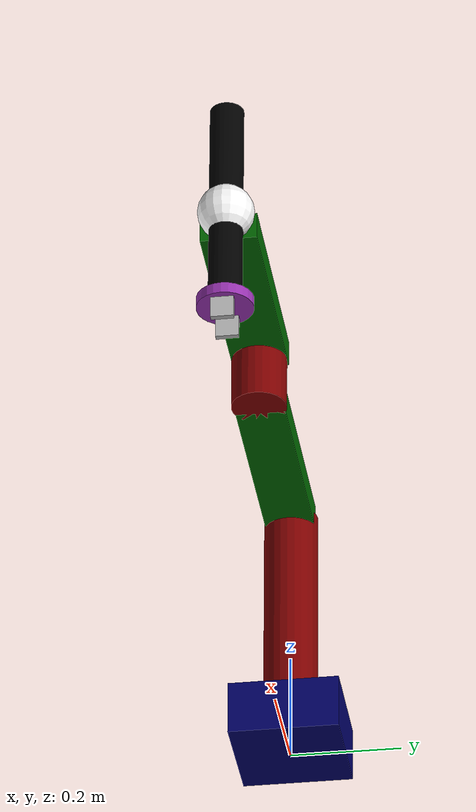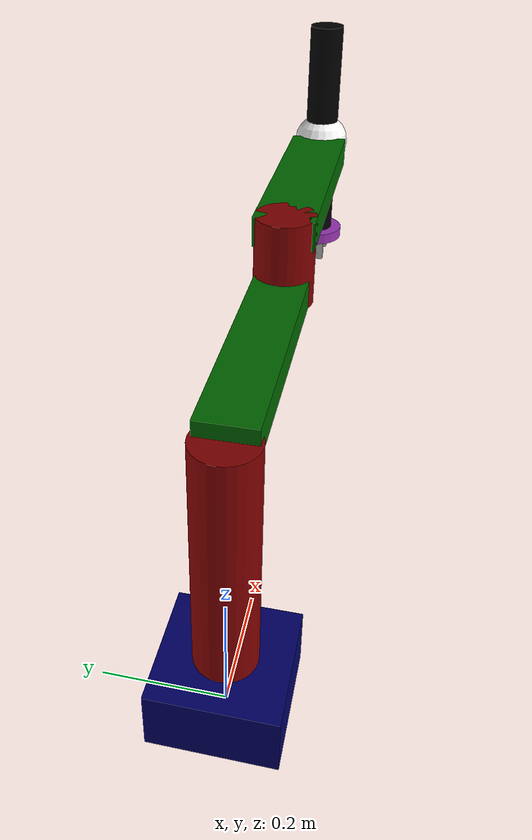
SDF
<?xml version="1.0" ?>
<sdf version="1.4">
  <model name="scara">

    <static>False</static>

    <!--Make the base of the Robot -->

    <link name="base">
        <pose>0 0 0 0 0 0 </pose>
        <collision name="collision_base">
          <pose>0 0 0.1 0 -0 0</pose>
          <geometry>
             <box>
                <size>0.2 0.2 0.1</size>
             </box>
          </geometry>
        </collision>
        <visual name="base_visual">
          <pose> 0 0 0.05 0 -0 0</pose>
          <geometry>
            <box>
               <size>0.2 0.2 0.1</size>
            </box>
          </geometry>
          <material>
            <ambient>0 0 0.4 1</ambient>
            <emissive>0 0 0.4 1</emissive>
          </material>
        </visual>
     </link>
     <!-- Fix the base to the world -->
     <joint name="base_joint" type="fixed">
       <parent>world</parent>
       <child>base</child>
     </joint>
     <!-- Second link -->
     <link name="link_1">
       <pose>0 0 0.1 0 0 0</pose>
       <collision name="link1_collision">
         <pose>0 0 0.1 0 0 0</pose>
         <geometry>
            <cylinder>
                <length>0.4</length>
                <radius>0.05</radius>
            </cylinder>
         </geometry>
       </collision>
       <collision name="link1_fixed_collision">
          <geometry>
             <box>
                <size>0.4 0.1 0.05</size>
             </box>
          </geometry>
       </collision>

       <visual name="link1_visual">
         <pose>0 0 0.2 0 0 0</pose>
         <geometry>
            <cylinder>
               <length>0.4</length>
               <radius>0.05</radius>
            </cylinder>
         </geometry>
         <material>
            <ambient>0.5 0 0 1</ambient>
            <emissive>0.5 0 0 1</emissive>
         </material>
       </visual>
       <visual name="link1_fixed_visual">
         <pose>0.2 0 0.4 0 0 0</pose>
         <geometry>
            <box>
              <size>0.4 0.09 0.05</size>
            </box>
         </geometry>
         <material>
            <ambient>0 0.4 0 1</ambient>
            <emissive>0 0.3 0 1</emissive>
         </material>
       </visual>
     </link>
     <!--Fix the link_1 to base -->
     <joint name="joint_1" type="revolute">
         <child>link_1</child>
         <parent>base</parent>
         <axis>
           <xyz>0 0 1</xyz>
           <limit>
              <lower>-1e+16</lower>
              <upper>1e+16</upper>
           </limit>
           <dynamics>
             <damping>0.2</damping>
             <friction>0.1</friction>
             <spring_reference>0</spring_reference>
             <spring_stiffness>0</spring_stiffness>
           </dynamics>
         </axis>
     </joint>
     <!--Link_2 -->
     <link name="link_2">
        <pose>0.45 0 0.4 0 0 0</pose>
        <collision name="link2_collision">
          <pose>-0.03 0 0.15 0 0 0 </pose>
          <geometry>
            <cylinder>
               <length>0.2</length>
               <radius>0.05</radius>
            </cylinder>
          </geometry>
        </collision>

        <collision name="link2_fixed_collision_1">
          <pose>0.2 0 0.225 0 0 1.57</pose>
          <geometry>
             <box>
                <size>0.1 0.4 0.05</size>
             </box>
          </geometry>
        </collision>

        <collision name="link2_fixed_collision_2">
             <pose>0.43 0 0.23 0 0 0</pose>
             <geometry>
                 <sphere>
                     <radius>0.07</radius>
                 </sphere>
             </geometry>
        </collision>

        <visual name="link2_visual">
           <pose>-0.03 0 0.15 0 0 0 </pose>
           <geometry>
              <cylinder>
                 <length>0.15</length>
                 <radius>0.05</radius>
              </cylinder>
           </geometry>
           <material>
              <ambient>0.5 0 0 1</ambient>
              <emissive>0.5 0 0 1</emissive>
           </material>
        </visual>

        <visual name="link2_fixed_visual_1">
           <pose>0.15 0 0.200 0 0 1.57</pose>
           <geometry>
               <box>
                 <size>0.1 0.4 0.05</size>
               </box>
           </geometry>
           <material>
              <ambient>0 0.4 0 1</ambient>
              <emissive>0 0.3 0 1</emissive>
           </material>
        </visual>
        <visual name="link2_fixed_visual_2">
           <pose>0.38 0 0.21 0 0 0</pose>
           <geometry>
              <sphere>
                  <radius>0.05</radius>
              </sphere>
           </geometry>
           <material>
             <ambient>1 1 1 1</ambient>
             <emissive>1 1 1 1</emissive>
           </material>
        </visual>
      </link>
      <!-- Create joint 2 -->
      <joint name="joint_2" type="revolute">
         <parent>link_1</parent>
         <child>link_2</child>
         <axis>
            <xyz>0 0 1</xyz>
            <limit>
               <lower>-1e+16</lower>
               <upper>1e+16</upper>
            </limit>
            <dynamics>
               <damping>0.2</damping>
               <friction>0.1</friction>
               <spring_reference>0</spring_reference>
               <spring_stiffness>0</spring_stiffness>
            </dynamics>
            <use_parent_model_frame>1</use_parent_model_frame>
         </axis>
       </joint>
       <!-- Link 3 -->
       <link name="link_3">
          <pose>0.25 0 0.225 0 0 0</pose>

          <collision name="link3_collision">
            <pose>0.58 0 0.4 0 0 0</pose>
            <geometry>
                <cylinder>
                   <length>0.3</length>
                   <radius>0.03</radius>
                </cylinder>
            </geometry>
         </collision>
       <visual name="link3_visual">
           <pose>0.58 0 0.4 0 0 0</pose>
           <geometry>
              <cylinder>
                 <length>0.4</length>
                 <radius>0.03</radius>
              </cylinder>
           </geometry>
           <material>
             <ambient>0 0 0 1</ambient>
             <emissive>0 0 0 1</emissive>
           </material>
         </visual>
         <velocity_decay/>
      </link>
      <!-- Joint 3 -->
      <joint name="joint_3" type="prismatic">
         <child>link_3</child>
         <parent>link_2</parent>
         <axis>
           <xyz> 0 0.001593 -0.99999 </xyz>
           <limit>
              <lower>-0.2</lower>
              <upper>0.2</upper>
              <effort>1000</effort>
              <velocity>0.1</velocity>
           </limit>
           <dynamics>
              <damping>0.4</damping>
              <friction>50</friction>
              <spring_reference>0</spring_reference>
              <spring_stiffness>0</spring_stiffness>
           </dynamics>
        </axis>
      </joint>

      <link name="plate">
       <pose>0.828 -0.000 0.44 3.14 -0 0</pose>

        <collision name='collision_plate'>
         <pose>0 0 0.02 0 0 0</pose>
         <geometry>
            <cylinder>
               <length>0.02</length>
               <radius>0.03</radius>
            </cylinder>
         </geometry>
      </collision>

       <visual name="visual_plate">
        <pose>0 0 0.02 0 0 0</pose>
        <geometry>
           <cylinder>
              <length>0.02</length>
              <radius>0.05</radius>
           </cylinder>
        </geometry>
        <material>
           <script>
              <name>Gazebo/PurpleGlow</name>
              <uri>file://media/materials/scripts/gazebo.material</uri>
           </script>
        </material>
      </visual>
     </link>

     <joint name="joint_4" type="revolute">
        <parent>link_3</parent>
        <child>plate</child>
        <axis>
           <xyz>0 0 1</xyz>
           <limit>
              <lower>-1e+16</lower>
              <upper>1e+16</upper>
           </limit>
        <dynamics>
          <damping>0.4</damping>
          <friction>0.0001</friction>
          <spring_reference>0</spring_reference>
          <spring_stiffness>0</spring_stiffness>
        </dynamics>
      </axis>
     </joint>

      <link name="gripper">
      <pose>0 0 0.010 0 0 0</pose>
      <collision name="gripper_collision_1">
        <pose frame=''>0.86 0 0.39 0 -0 0</pose>
        <geometry>
           <box>
              <size>0.01 0.04 0.06</size>
           </box>
        </geometry>
      </collision>
       <collision name="gripper_collision_2">
        <pose frame=''>0.80 0 0.39 0 -0 0</pose>
        <geometry>
           <box>
              <size>0.01 0.04 0.06</size>
           </box>
        </geometry>
      </collision>

      <visual name="gripper_visual_1">
        <pose frame=''>0.86 0 0.39 0 -0 0</pose>
        <geometry>
           <box>
              <size>0.01 0.04 0.06</size>
           </box>
        </geometry>
       </visual>

       <visual name="gripper_visual_2">
        <pose frame=''>0.80 0 0.39 0 -0 0</pose>
        <geometry>
           <box>
              <size>0.01 0.04 0.06</size>
           </box>
        </geometry>
       </visual>
     </link>

     <joint name="joint_5" type="fixed">
        <parent>plate</parent>
        <child>gripper</child>
     </joint>

 </model>
</sdf>
